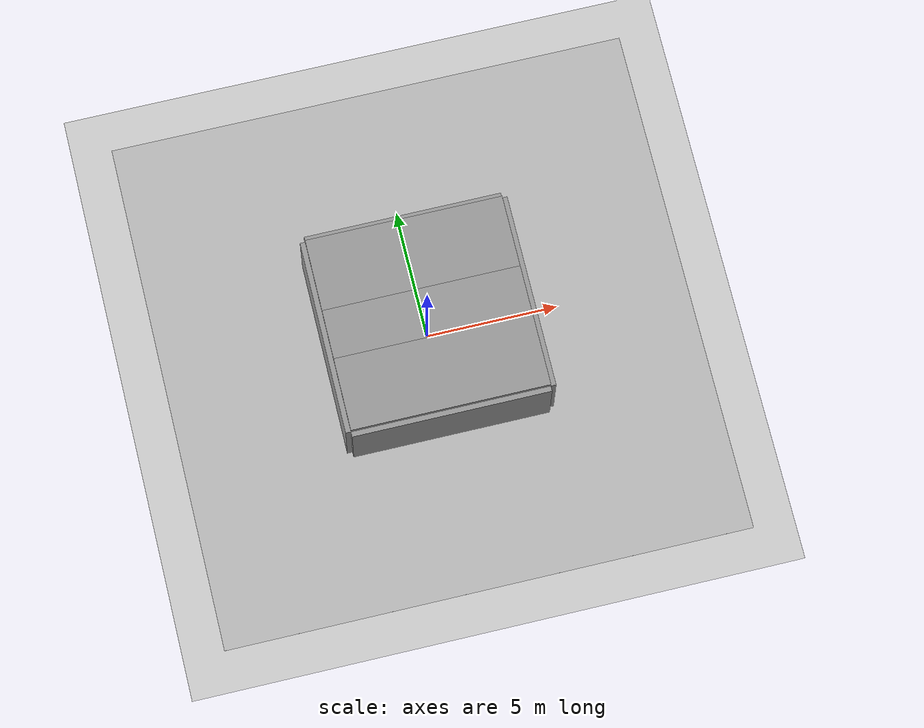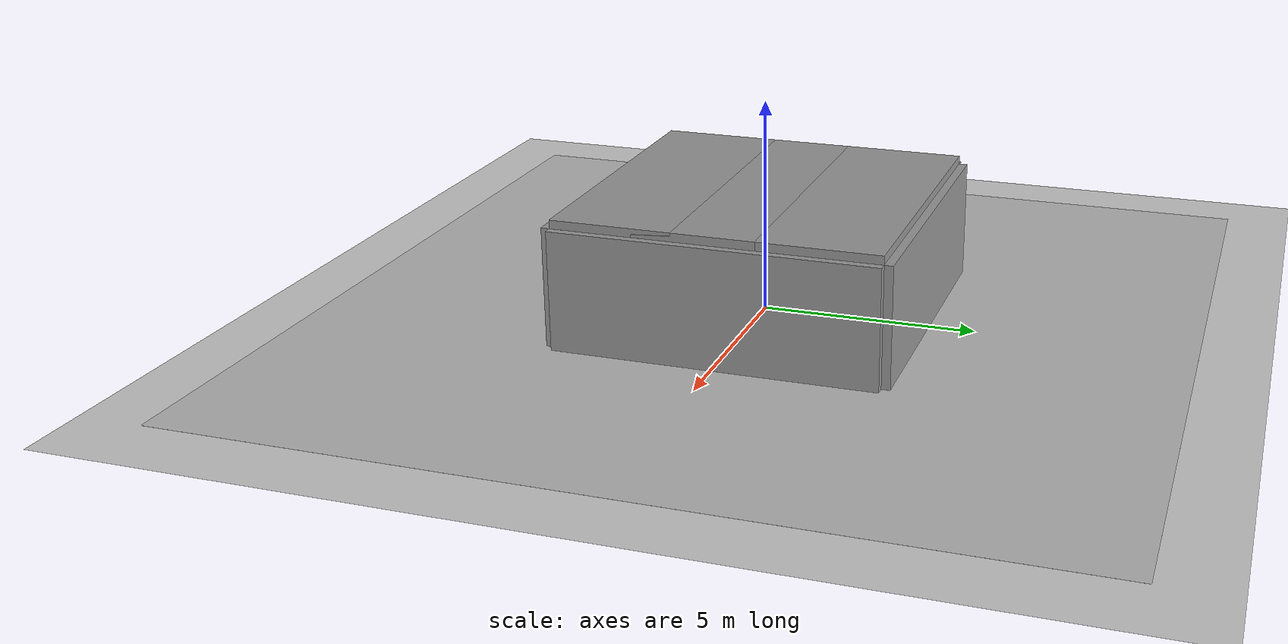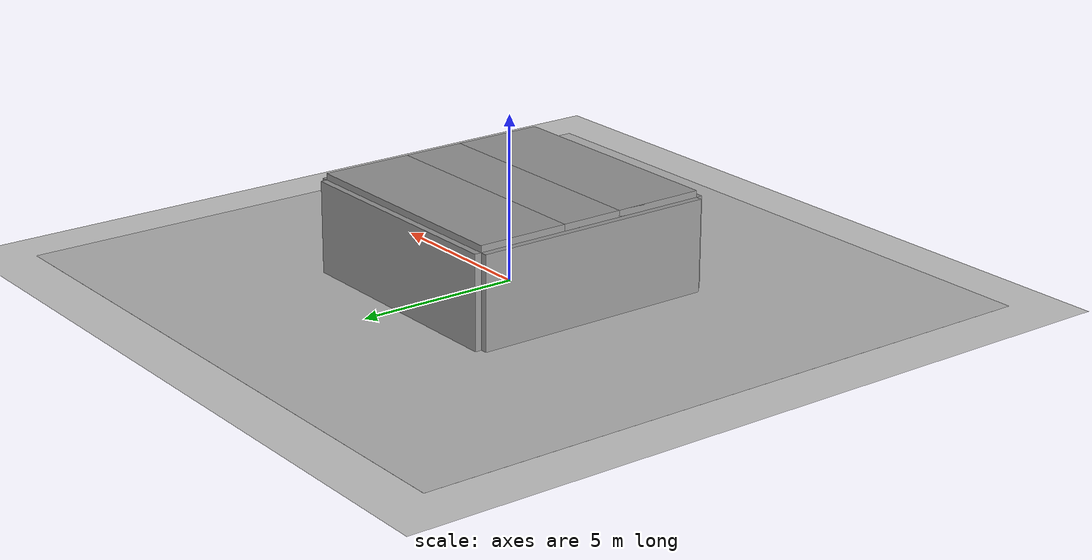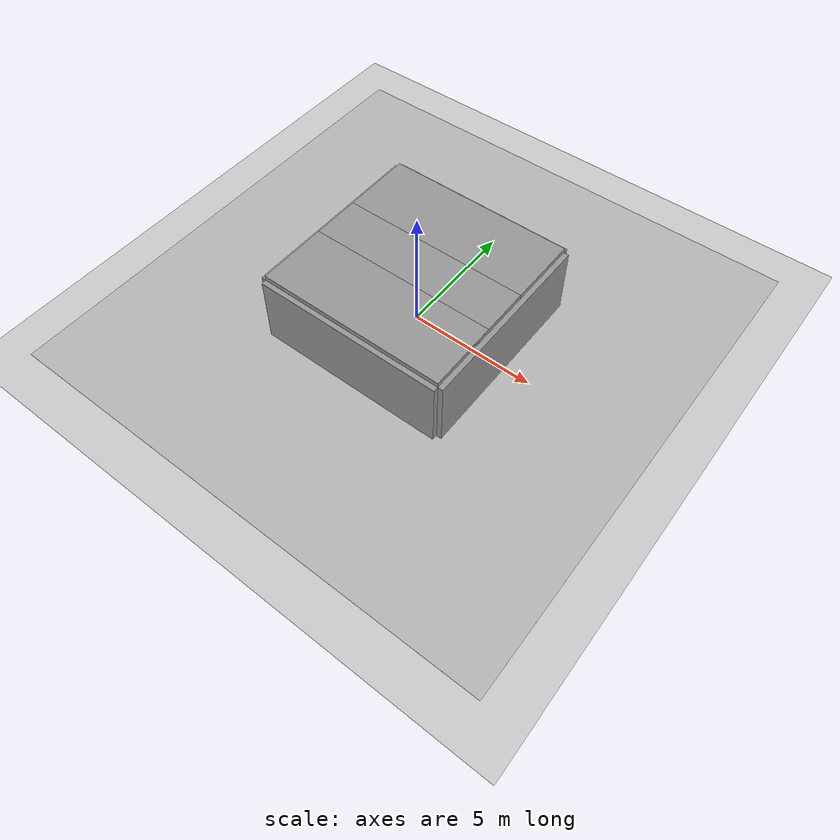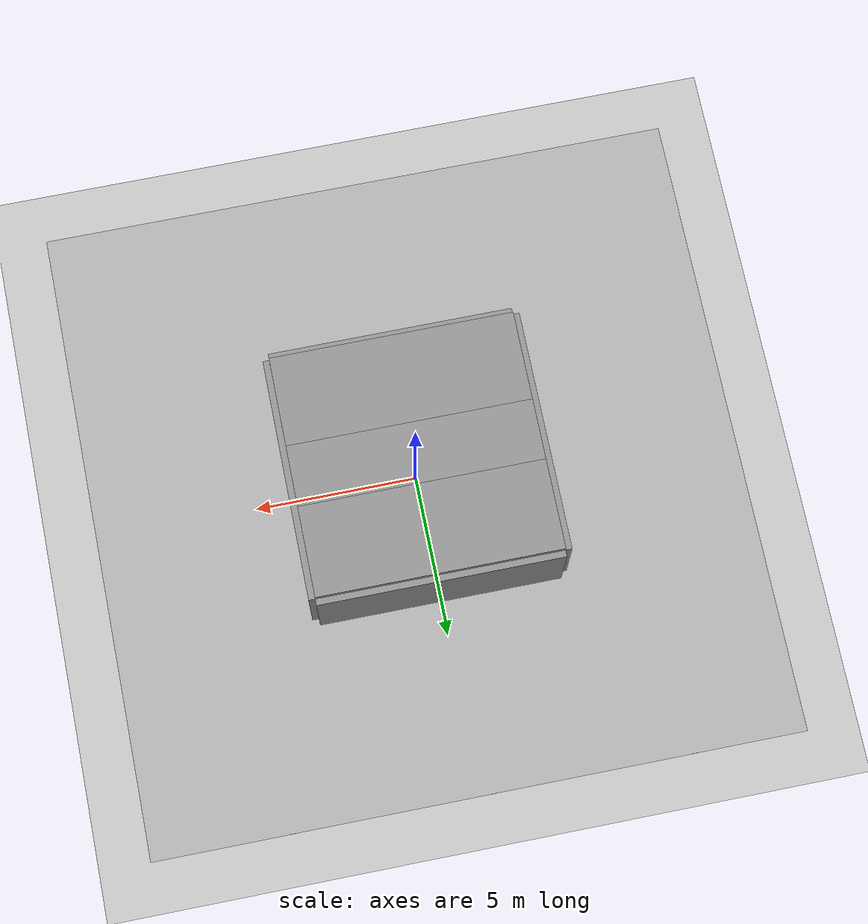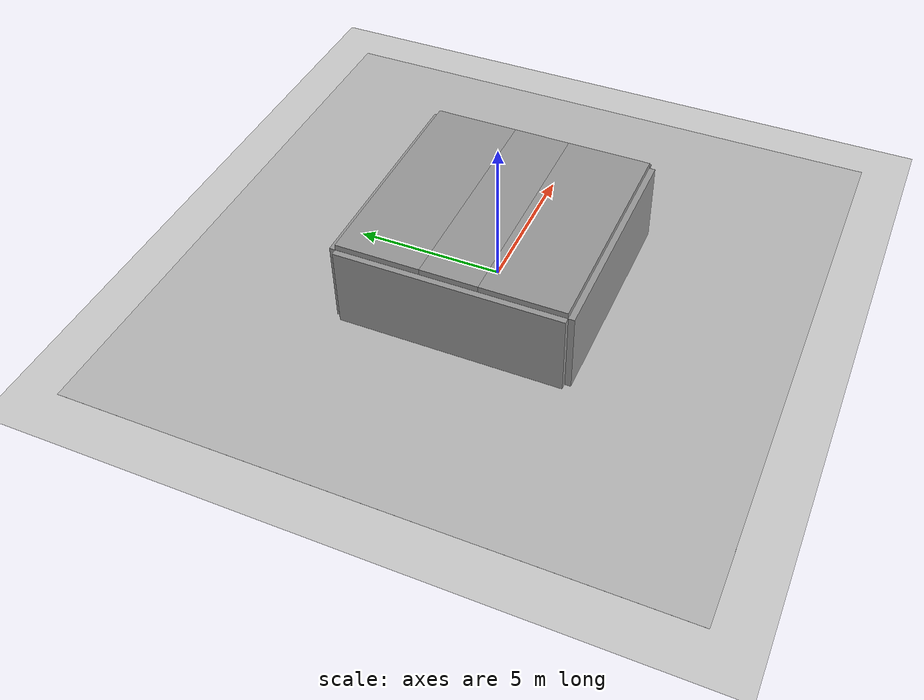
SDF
<sdf version="1.7">
 <world name="default">
  <model name="ground_plane">
   <static>1</static>
   <link name="link">
    <collision name="collision">
     <geometry><plane><normal>0 0 1</normal><size>100 100</size></plane></geometry>
     <surface><friction><ode><mu>100</mu><mu2>50</mu2></ode></friction></surface>
    </collision>
    <visual name="visual">
     <cast_shadows>0</cast_shadows>
     <geometry><plane><normal>0 0 1</normal><size>100 100</size></plane></geometry>
     <material>
      <script><uri>file://media/materials/scripts/gazebo.material</uri><name>Gazebo/Grey</name></script>
     </material>
    </visual>
   </link>
  </model>
  <gravity>0 0 -9.8</gravity>
  <magnetic_field>6e-06 2.3e-05 -4.2e-05</magnetic_field>
  <atmosphere type="adiabatic"/>
  <physics name="default_physics" default="0" type="ode">
   <max_step_size>0.001</max_step_size>
   <real_time_factor>1</real_time_factor>
   <real_time_update_rate>1000</real_time_update_rate>
  </physics>
  <scene><ambient>0.4 0.4 0.4 1</ambient><background>0.7 0.7 0.7 1</background><shadows>1</shadows></scene>
  <spherical_coordinates>
   <surface_model>EARTH_WGS84</surface_model>
   <latitude_deg>0</latitude_deg>
   <longitude_deg>0</longitude_deg>
   <elevation>0</elevation>
   <heading_deg>0</heading_deg>
  </spherical_coordinates>
  <model name="Floor_room">
   <link name="main">
    <pose>0 0 0.01 0 -0 0</pose>
    <collision name="main_Collision"><geometry><box><size>20 20 0.001</size></box></geometry></collision>
    <visual name="main_Visual">
     <geometry><box><size>20 20 0.001</size></box></geometry>
     <material>
      <script>
       <uri>model://Floor_room/materials/scripts</uri>
       <uri>model://Floor_room/materials/textures</uri>
       <name>floor_room</name>
      </script>
     </material>
    </visual>
   </link>
   <static>1</static>
  </model>
  <model name="grey_wall">
   <static>1</static>
   <link name="link">
    <pose>0 0 1.4 0 -0 0</pose>
    <collision name="collision"><geometry><box><size>7.5 0.2 2.8</size></box></geometry></collision>
    <visual name="visual">
     <cast_shadows>0</cast_shadows>
     <geometry><box><size>7.5 0.2 2.8</size></box></geometry>
     <material>
      <script>
       <uri>model://grey_wall/materials/scripts</uri>
       <uri>model://grey_wall/materials/textures</uri>
       <name>vrc/grey_wall</name>
      </script>
     </material>
    </visual>
   </link>
   <pose>0 -3.85 0 0 -0 0</pose>
  </model>
  <model name="grey_wall_0">
   <static>1</static>
   <link name="link">
    <pose>0 0 1.4 0 -0 0</pose>
    <collision name="collision"><geometry><box><size>7.5 0.2 2.8</size></box></geometry></collision>
    <visual name="visual">
     <cast_shadows>0</cast_shadows>
     <geometry><box><size>7.5 0.2 2.8</size></box></geometry>
     <material>
      <script>
       <uri>model://grey_wall/materials/scripts</uri>
       <uri>model://grey_wall/materials/textures</uri>
       <name>vrc/grey_wall</name>
      </script>
     </material>
    </visual>
   </link>
   <pose>0 3.85 0 0 -0 0</pose>
  </model>
  <model name="grey_wall_1">
   <static>1</static>
   <link name="link">
    <pose>0 0 1.4 0 -0 0</pose>
    <collision name="collision"><geometry><box><size>7.5 0.2 2.8</size></box></geometry></collision>
    <visual name="visual">
     <cast_shadows>0</cast_shadows>
     <geometry><box><size>7.5 0.2 2.8</size></box></geometry>
     <material>
      <script>
       <uri>model://grey_wall/materials/scripts</uri>
       <uri>model://grey_wall/materials/textures</uri>
       <name>vrc/grey_wall</name>
      </script>
     </material>
    </visual>
   </link>
   <pose>3.85 0 0 0 -0 1.57096</pose>
  </model>
  <model name="grey_wall_2">
   <static>1</static>
   <link name="link">
    <pose>0 0 1.4 0 -0 0</pose>
    <collision name="collision"><geometry><box><size>7.5 0.2 2.8</size></box></geometry></collision>
    <visual name="visual">
     <cast_shadows>0</cast_shadows>
     <geometry><box><size>7.5 0.2 2.8</size></box></geometry>
     <material>
      <script>
       <uri>model://grey_wall/materials/scripts</uri>
       <uri>model://grey_wall/materials/textures</uri>
       <name>vrc/grey_wall</name>
      </script>
     </material>
    </visual>
   </link>
   <pose>-3.85 0 0 0 -0 1.57096</pose>
  </model>
  <model name="capsicum_plant_6">
   <link name="link_capsicum_plant_6">
    <visual name="visual">
     <geometry><mesh><uri>model://capsicum_plant_6/meshes/VG07_6.dae</uri></mesh></geometry>
    </visual>
    <collision name="collision">
     <geometry><mesh><uri>model://capsicum_plant_6/meshes/VG07_6.dae</uri></mesh></geometry>
    </collision>
   </link>
   <static>1</static>
   <pose>-0.386098 0.590391 0.080811 0 -0 0</pose>
  </model>
  <light name="user_directional_light_0" type="directional">
   <pose>1.90703 1.7116 1 0 -0 0</pose>
   <diffuse>0.5 0.5 0.5 1</diffuse>
   <specular>0.1 0.1 0.1 1</specular>
   <direction>0.1 0.1 -0.9</direction>
   <attenuation>
    <range>20</range>
    <constant>0.5</constant>
    <linear>0.01</linear>
    <quadratic>0.001</quadratic>
   </attenuation>
   <spot><inner_angle>0</inner_angle><outer_angle>0</outer_angle><falloff>0</falloff></spot>
  </light>
  <light name="user_spot_light_0" type="spot">
   <pose>0.589804 2.02287 1 0 -0 0</pose>
   <diffuse>0.5 0.5 0.5 1</diffuse>
   <specular>0.1 0.1 0.1 1</specular>
   <direction>0 0 -1</direction>
   <attenuation>
    <range>20</range>
    <constant>0.5</constant>
    <linear>0.01</linear>
    <quadratic>0.001</quadratic>
   </attenuation>
   <cast_shadows>0</cast_shadows>
   <spot><inner_angle>0.6</inner_angle><outer_angle>1</outer_angle><falloff>1</falloff></spot>
  </light>
  <model name="grey_wall_3">
   <static>1</static>
   <link name="link">
    <pose>0 0 1.4 0 -0 0</pose>
    <collision name="collision"><geometry><box><size>7.5 0.2 2.8</size></box></geometry></collision>
    <visual name="visual">
     <cast_shadows>0</cast_shadows>
     <geometry><box><size>7.5 0.2 2.8</size></box></geometry>
     <material>
      <script>
       <uri>model://grey_wall/materials/scripts</uri>
       <uri>model://grey_wall/materials/textures</uri>
       <name>vrc/grey_wall</name>
      </script>
     </material>
    </visual>
   </link>
   <pose>0 3.75 2.90001 1.5708 -0 0</pose>
  </model>
  <model name="grey_wall_4">
   <static>1</static>
   <link name="link">
    <pose>0 0 1.4 0 -0 0</pose>
    <collision name="collision"><geometry><box><size>7.5 0.2 2.8</size></box></geometry></collision>
    <visual name="visual">
     <cast_shadows>0</cast_shadows>
     <geometry><box><size>7.5 0.2 2.8</size></box></geometry>
     <material>
      <script>
       <uri>model://grey_wall/materials/scripts</uri>
       <uri>model://grey_wall/materials/textures</uri>
       <name>vrc/grey_wall</name>
      </script>
     </material>
    </visual>
   </link>
   <pose>0 0.95 2.90001 1.5708 -0 0</pose>
  </model>
  <model name="grey_wall_5">
   <static>1</static>
   <link name="link">
    <pose>0 0 1.4 0 -0 0</pose>
    <collision name="collision"><geometry><box><size>7.5 0.2 2.8</size></box></geometry></collision>
    <visual name="visual">
     <cast_shadows>0</cast_shadows>
     <geometry><box><size>7.5 0.2 2.8</size></box></geometry>
     <material>
      <script>
       <uri>model://grey_wall/materials/scripts</uri>
       <uri>model://grey_wall/materials/textures</uri>
       <name>vrc/grey_wall</name>
      </script>
     </material>
    </visual>
   </link>
   <pose>0 -0.95 2.90001 1.5708 -0 0</pose>
  </model>
  <model name="capsicum_plant_6_no_fruits">
   <link name="link_capsicum_plant_6_no_fruits">
    <visual name="visual">
     <geometry><mesh><uri>model://capsicum_plant_6_no_fruits/meshes/VG07_6_no_fruits.dae</uri></mesh></geometry>
    </visual>
   </link>
   <static>1</static>
   <pose>0.29604 0.862187 -0.072361 0 -0 0</pose>
  </model>
  <model name="capsicum_plant_6_no_fruits_0">
   <link name="link_capsicum_plant_6_no_fruits">
    <visual name="visual">
     <geometry><mesh><uri>model://capsicum_plant_6_no_fruits/meshes/VG07_6_no_fruits.dae</uri></mesh></geometry>
    </visual>
   </link>
   <static>1</static>
   <pose>0.78769 0.65995 -0.180212 0 -0 0</pose>
  </model>
  <model name="capsicum_plant_6_0">
   <link name="link_capsicum_plant_6">
    <visual name="visual">
     <geometry><mesh><uri>model://capsicum_plant_6/meshes/VG07_6.dae</uri></mesh></geometry>
    </visual>
   </link>
   <static>1</static>
   <pose>-0.773459 0.315419 -0.047382 0 -0 0</pose>
  </model>
  <light name="user_spot_light_0_clone" type="spot">
   <pose>-0.527148 0.836609 1.23081 0 -0 0</pose>
   <diffuse>0.5 0.5 0.5 1</diffuse>
   <specular>0.1 0.1 0.1 1</specular>
   <direction>0 0 -1</direction>
   <attenuation>
    <range>20</range>
    <constant>0.5</constant>
    <linear>0.01</linear>
    <quadratic>0.001</quadratic>
   </attenuation>
   <cast_shadows>0</cast_shadows>
   <spot><inner_angle>0.6</inner_angle><outer_angle>1</outer_angle><falloff>1</falloff></spot>
  </light>
 </world>
</sdf>
